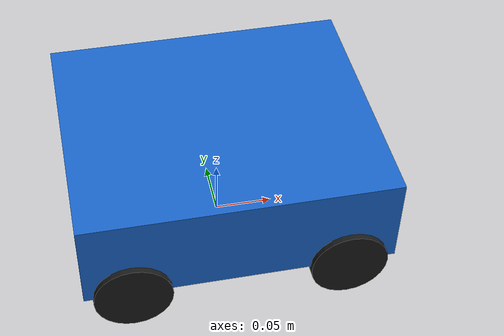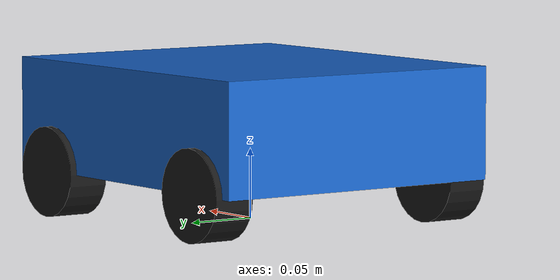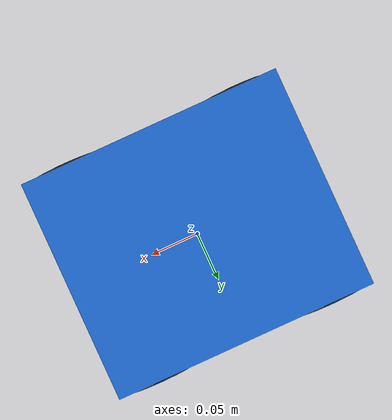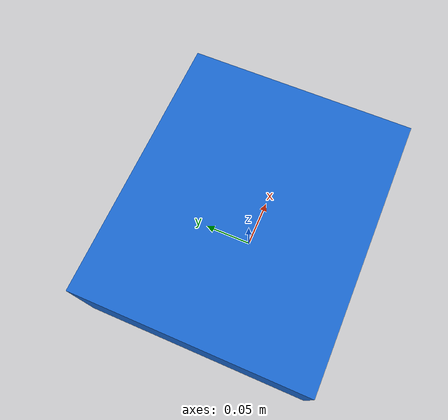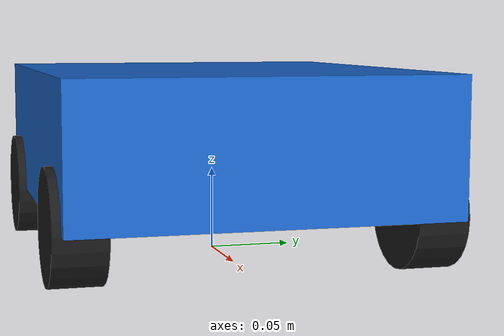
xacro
<?xml version="1.0"?>
<robot xmlns:xacro="http://www.ros.org/wiki/xacro" name="botlab_zero">

  <!-- 引入模块 -->
  <xacro:include filename="$(find botlab_diff_description)/urdf/botlab_zero/base.urdf.xacro"/>
  <xacro:include filename="$(find botlab_diff_description)/urdf/botlab_zero/wheel.urdf.xacro"/>
  <xacro:include filename="$(find botlab_diff_description)/urdf/botlab_zero/control.urdf.xacro"/>

  <!-- 参数定义（保持与原机器人一致） -->
  <xacro:property name="chassis_length" value="0.26"/>     <!-- 底盘长度 26cm -->
  <xacro:property name="chassis_width"  value="0.22"/>     <!-- 底盘宽度 22cm -->
  <xacro:property name="chassis_height" value="0.08"/>     <!-- 底盘高度 8cm -->
  <xacro:property name="wheel_radius"   value="0.0325"/>   <!-- 轮子半径 3.25cm -->
  <xacro:property name="wheel_width"    value="0.03"/>     <!-- 轮胎厚度 3cm -->
  <xacro:property name="wheelbase"      value="0.18"/>     <!-- 前后轮距 -->
  <xacro:property name="track"          value="0.20"/>     <!-- 左右轮距 -->

  <!-- 底盘模块 -->
  <xacro:base
    chassis_length="${chassis_length}"
    chassis_width="${chassis_width}"
    chassis_height="${chassis_height}"
    wheel_radius="${wheel_radius}"/>

  <!-- 四个轮子：位置完全复刻原机器人 -->
  <xacro:wheel prefix="fl"
               x="${ wheelbase/2}"
               y="${ track/2}"
               wheel_radius="${wheel_radius}"
               wheel_width="${wheel_width}"/>

  <xacro:wheel prefix="fr"
               x="${ wheelbase/2}"
               y="-${ track/2}"
               wheel_radius="${wheel_radius}"
               wheel_width="${wheel_width}"/>

  <xacro:wheel prefix="rl"
               x="-${ wheelbase/2}"
               y="${ track/2}"
               wheel_radius="${wheel_radius}"
               wheel_width="${wheel_width}"/>

  <xacro:wheel prefix="rr"
               x="-${ wheelbase/2}"
               y="-${ track/2}"
               wheel_radius="${wheel_radius}"
               wheel_width="${wheel_width}"/>

  <!-- ros2_control system -->
  <ros2_control name="botlab_zero_hw" type="system">
    <hardware>
      <plugin>gazebo_ros2_control/GazeboSystem</plugin>
    </hardware>

    <joint name="joint_fl">
      <command_interface name="velocity"/>
      <state_interface name="position"/>
      <state_interface name="velocity"/>
    </joint>
    <joint name="joint_fr">
      <command_interface name="velocity"/>
      <state_interface name="position"/>
      <state_interface name="velocity"/>
    </joint>
    <joint name="joint_rl">
      <command_interface name="velocity"/>
      <state_interface name="position"/>
      <state_interface name="velocity"/>
    </joint>
    <joint name="joint_rr">
      <command_interface name="velocity"/>
      <state_interface name="position"/>
      <state_interface name="velocity"/>
    </joint>
  </ros2_control>

  <!-- Gazebo 配置 -->
  <gazebo reference="base_link">
    <mu1>1.0</mu1>
    <mu2>1.0</mu2>
    <material>Gazebo/Blue</material>
  </gazebo>

  <!-- ROS2 Control 插件 -->
  <gazebo>
    <plugin name="gazebo_ros2_control" filename="libgazebo_ros2_control.so">
      <parameters>$(find botlab_diff_description)/config/botlab_zero_controllers.yaml</parameters>
      <ros>
        <remapping>/diff_drive_controller/cmd_vel_unstamped:=/cmd_vel</remapping>
        <remapping>/diff_drive_controller/odom:=/odom</remapping>
      </ros>
    </plugin>
  </gazebo>
</robot>

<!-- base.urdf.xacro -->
<robot xmlns:xacro="http://www.ros.org/wiki/xacro">

  <xacro:macro name="base" params="chassis_length chassis_width chassis_height wheel_radius">
    <link name="base_link">
      <visual>
        <geometry>
          <box size="${chassis_length} ${chassis_width} ${chassis_height}"/>
        </geometry>
        <origin xyz="0 0 ${wheel_radius + chassis_height/2}" rpy="0 0 0"/>
        <material name="blue">
          <color rgba="0.1 0.4 0.8 1"/>
        </material>
      </visual>

      <collision>
        <geometry>
          <box size="${chassis_length} ${chassis_width} ${chassis_height}"/>
        </geometry>
        <origin xyz="0 0 ${wheel_radius + chassis_height/2}" rpy="0 0 0"/>
      </collision>

      <inertial>
        <mass value="0.5"/>
        <inertia ixx="0.01" ixy="0" ixz="0"
                 iyy="0.01" iyz="0" izz="0.01"/>
      </inertial>
    </link>
    <gazebo reference="base_link">
        <mu1>1.0</mu1>
        <mu2>1.0</mu2>
        <material>Gazebo/Blue</material>
    </gazebo>
  </xacro:macro>

</robot>

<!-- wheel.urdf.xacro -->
<robot xmlns:xacro="http://www.ros.org/wiki/xacro">

  <xacro:macro name="wheel" params="prefix x y wheel_radius wheel_width">
    <link name="wheel_${prefix}">
      <visual>
        <geometry>
          <cylinder radius="${wheel_radius}" length="${wheel_width}"/>
        </geometry>
        <origin xyz="0 0 0" rpy="1.5708 0 0"/>
        <material name="black">
          <color rgba="0.1 0.1 0.1 1"/>
        </material>
      </visual>

      <collision>
        <geometry>
          <cylinder radius="${wheel_radius}" length="${wheel_width}"/>
        </geometry>
        <origin xyz="0 0 0" rpy="1.5708 0 0"/>
      </collision>

      <inertial>
        <mass value="0.05"/>
        <inertia ixx="0.0001" ixy="0" ixz="0"
                 iyy="0.0001" iyz="0" izz="0.0001"/>
      </inertial>

    </link>

    <joint name="joint_${prefix}" type="continuous">
      <parent link="base_link"/>
      <child link="wheel_${prefix}"/>
      <origin xyz="${x} ${y} ${wheel_radius}" rpy="0 0 0"/>
      <axis xyz="0 1 0"/>
    </joint>

    <gazebo reference="wheel_${prefix}">
        <mu1>20.0</mu1>
        <mu2>20.0</mu2>
        <kp>1000000.0</kp>
        <kd>1.0</kd>
        <material>Gazebo/Black</material>
    </gazebo>
  </xacro:macro>

</robot>
